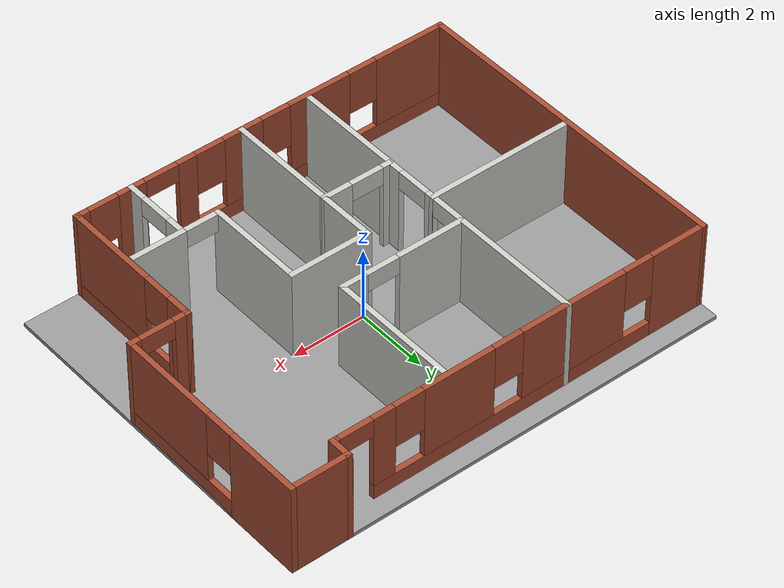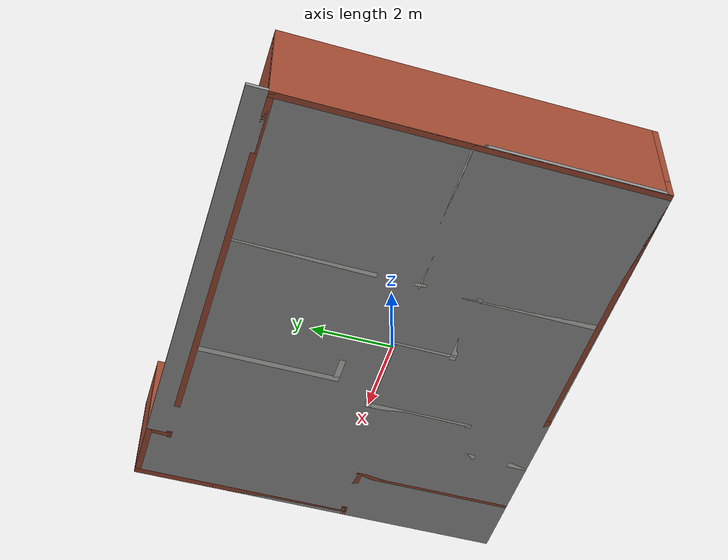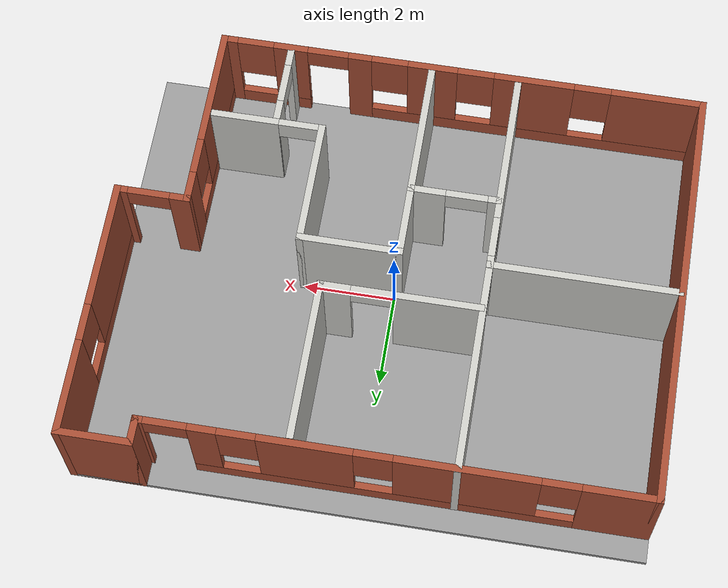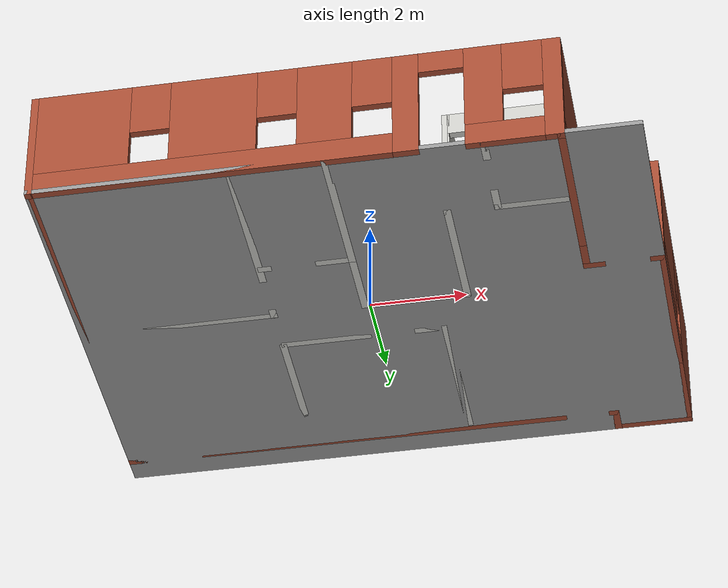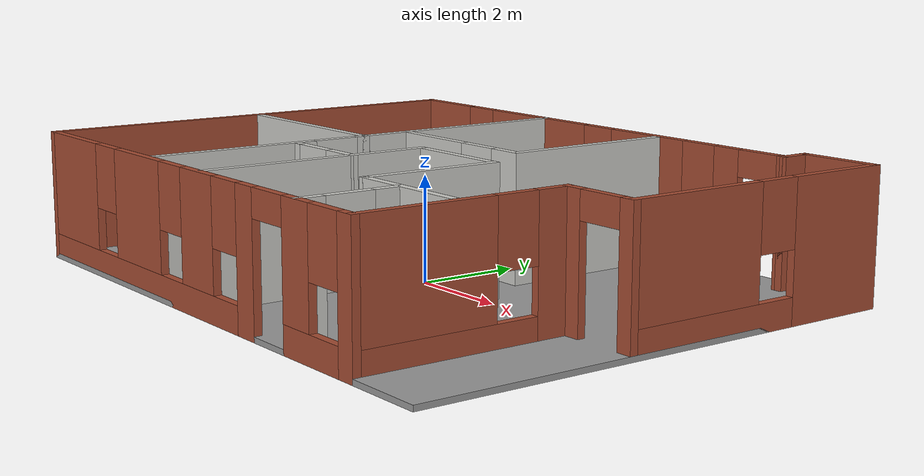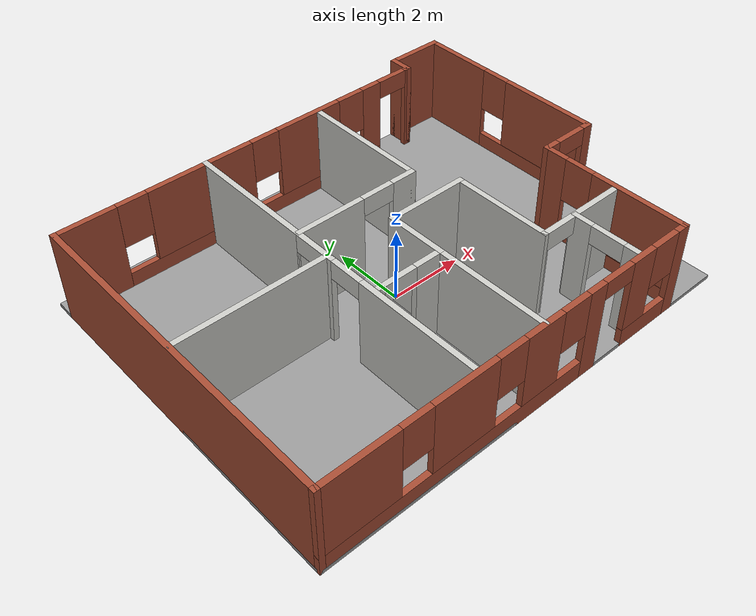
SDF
<?xml version='1.0'?>
<sdf version='1.6'>
  <model name='Building'>
    <pose frame=''>-0 0.25 0 0 -0 0</pose>
    <link name='Floor_0'>
      <collision name='Floor_0_Collision'>
        <geometry>
          <box>
            <size>12.15 9.65 0.1</size>
          </box>
        </geometry>
        <pose frame=''>0 0 0.05 0 -0 0</pose>
      </collision>
      <visual name='Floor_0_Visual'>
        <pose frame=''>0 0 0.05 0 -0 0</pose>
        <geometry>
          <box>
            <size>12.15 9.65 0.1</size>
          </box>
        </geometry>
        <material>
          <script>
            <uri>file://media/materials/scripts/gazebo.material</uri>
            <name>Gazebo/Grey</name>
          </script>
          <ambient>1 1 1 1</ambient>
        </material>
        <meta>
          <layer>0</layer>
        </meta>
      </visual>
      <pose frame=''>0 0 0 0 -0 0</pose>
    </link>
    <link name='Wall_10'>
      <pose frame=''>-0.75 4.25 0 0 -0 0</pose>
      <visual name='Wall_10_Visual_0'>
        <pose frame=''>-4.51925 0 1.25 0 -0 0</pose>
        <geometry>
          <box>
            <size>1.6115 0.15 2.5</size>
          </box>
        </geometry>
        <material>
          <script>
            <uri>file://media/materials/scripts/gazebo.material</uri>
            <name>Gazebo/Bricks</name>
          </script>
          <ambient>1 1 1 1</ambient>
        </material>
        <meta>
          <layer>0</layer>
        </meta>
      </visual>
      <collision name='Wall_10_Collision_0'>
        <geometry>
          <box>
            <size>1.6115 0.15 2.5</size>
          </box>
        </geometry>
        <pose frame=''>-4.51925 0 1.25 0 -0 0</pose>
      </collision>
      <visual name='Wall_10_Visual_1'>
        <pose frame=''>5.2153 0 1.25 0 -0 0</pose>
        <geometry>
          <box>
            <size>0.219398 0.15 2.5</size>
          </box>
        </geometry>
        <material>
          <script>
            <uri>file://media/materials/scripts/gazebo.material</uri>
            <name>Gazebo/Bricks</name>
          </script>
          <ambient>1 1 1 1</ambient>
        </material>
        <meta>
          <layer>0</layer>
        </meta>
      </visual>
      <collision name='Wall_10_Collision_1'>
        <geometry>
          <box>
            <size>0.219398 0.15 2.5</size>
          </box>
        </geometry>
        <pose frame=''>5.2153 0 1.25 0 -0 0</pose>
      </collision>
      <visual name='Wall_10_Visual_2'>
        <pose frame=''>0.246053 0 0.25 0 -0 0</pose>
        <geometry>
          <box>
            <size>7.9191 0.15 0.5</size>
          </box>
        </geometry>
        <material>
          <script>
            <uri>file://media/materials/scripts/gazebo.material</uri>
            <name>Gazebo/Bricks</name>
          </script>
          <ambient>1 1 1 1</ambient>
        </material>
        <meta>
          <layer>0</layer>
        </meta>
      </visual>
      <collision name='Wall_10_Collision_2'>
        <geometry>
          <box>
            <size>7.9191 0.15 0.5</size>
          </box>
        </geometry>
        <pose frame=''>0.246053 0 0.25 0 -0 0</pose>
      </collision>
      <visual name='Wall_10_Visual_3'>
        <pose frame=''>-1.433 0 1.5 0 -0 0</pose>
        <geometry>
          <box>
            <size>2.96099 0.15 2</size>
          </box>
        </geometry>
        <material>
          <script>
            <uri>file://media/materials/scripts/gazebo.material</uri>
            <name>Gazebo/Bricks</name>
          </script>
          <ambient>1 1 1 1</ambient>
        </material>
        <meta>
          <layer>0</layer>
        </meta>
      </visual>
      <collision name='Wall_10_Collision_3'>
        <geometry>
          <box>
            <size>2.96099 0.15 2</size>
          </box>
        </geometry>
        <pose frame=''>-1.433 0 1.5 0 -0 0</pose>
      </collision>
      <visual name='Wall_10_Visual_4'>
        <pose frame=''>1.82828 0 1.5 0 -0 0</pose>
        <geometry>
          <box>
            <size>1.96157 0.15 2</size>
          </box>
        </geometry>
        <material>
          <script>
            <uri>file://media/materials/scripts/gazebo.material</uri>
            <name>Gazebo/Bricks</name>
          </script>
          <ambient>1 1 1 1</ambient>
        </material>
        <meta>
          <layer>0</layer>
        </meta>
      </visual>
      <collision name='Wall_10_Collision_4'>
        <geometry>
          <box>
            <size>1.96157 0.15 2</size>
          </box>
        </geometry>
        <pose frame=''>1.82828 0 1.5 0 -0 0</pose>
      </collision>
      <visual name='Wall_10_Visual_5'>
        <pose frame=''>3.90733 0 1.5 0 -0 0</pose>
        <geometry>
          <box>
            <size>0.596536 0.15 2</size>
          </box>
        </geometry>
        <material>
          <script>
            <uri>file://media/materials/scripts/gazebo.material</uri>
            <name>Gazebo/Bricks</name>
          </script>
          <ambient>1 1 1 1</ambient>
        </material>
        <meta>
          <layer>0</layer>
        </meta>
      </visual>
      <collision name='Wall_10_Collision_5'>
        <geometry>
          <box>
            <size>0.596536 0.15 2</size>
          </box>
        </geometry>
        <pose frame=''>3.90733 0 1.5 0 -0 0</pose>
      </collision>
      <visual name='Wall_10_Visual_6'>
        <pose frame=''>-3.3135 0 1.9 0 -0 0</pose>
        <geometry>
          <box>
            <size>0.8 0.15 1.2</size>
          </box>
        </geometry>
        <material>
          <script>
            <uri>file://media/materials/scripts/gazebo.material</uri>
            <name>Gazebo/Bricks</name>
          </script>
          <ambient>1 1 1 1</ambient>
        </material>
        <meta>
          <layer>0</layer>
        </meta>
      </visual>
      <collision name='Wall_10_Collision_6'>
        <geometry>
          <box>
            <size>0.8 0.15 1.2</size>
          </box>
        </geometry>
        <pose frame=''>-3.3135 0 1.9 0 -0 0</pose>
      </collision>
      <visual name='Wall_10_Visual_7'>
        <pose frame=''>0.447498 0 1.9 0 -0 0</pose>
        <geometry>
          <box>
            <size>0.8 0.15 1.2</size>
          </box>
        </geometry>
        <material>
          <script>
            <uri>file://media/materials/scripts/gazebo.material</uri>
            <name>Gazebo/Bricks</name>
          </script>
          <ambient>1 1 1 1</ambient>
        </material>
        <meta>
          <layer>0</layer>
        </meta>
      </visual>
      <collision name='Wall_10_Collision_7'>
        <geometry>
          <box>
            <size>0.8 0.15 1.2</size>
          </box>
        </geometry>
        <pose frame=''>0.447498 0 1.9 0 -0 0</pose>
      </collision>
      <visual name='Wall_10_Visual_8'>
        <pose frame=''>3.20907 0 1.9 0 -0 0</pose>
        <geometry>
          <box>
            <size>0.8 0.15 1.2</size>
          </box>
        </geometry>
        <material>
          <script>
            <uri>file://media/materials/scripts/gazebo.material</uri>
            <name>Gazebo/Bricks</name>
          </script>
          <ambient>1 1 1 1</ambient>
        </material>
        <meta>
          <layer>0</layer>
        </meta>
      </visual>
      <collision name='Wall_10_Collision_8'>
        <geometry>
          <box>
            <size>0.8 0.15 1.2</size>
          </box>
        </geometry>
        <pose frame=''>3.20907 0 1.9 0 -0 0</pose>
      </collision>
      <visual name='Wall_10_Visual_9'>
        <pose frame=''>4.6556 0 2.25 0 -0 0</pose>
        <geometry>
          <box>
            <size>0.9 0.15 0.5</size>
          </box>
        </geometry>
        <material>
          <script>
            <uri>file://media/materials/scripts/gazebo.material</uri>
            <name>Gazebo/Bricks</name>
          </script>
          <ambient>1 1 1 1</ambient>
        </material>
        <meta>
          <layer>0</layer>
        </meta>
      </visual>
      <collision name='Wall_10_Collision_9'>
        <geometry>
          <box>
            <size>0.9 0.15 0.5</size>
          </box>
        </geometry>
        <pose frame=''>4.6556 0 2.25 0 -0 0</pose>
      </collision>
    </link>
    <link name='Wall_11'>
      <collision name='Wall_11_Collision'>
        <geometry>
          <box>
            <size>0.65 0.15 2.5</size>
          </box>
        </geometry>
        <pose frame=''>0 0 1.25 0 -0 0</pose>
      </collision>
      <visual name='Wall_11_Visual'>
        <pose frame=''>0 0 1.25 0 -0 0</pose>
        <geometry>
          <box>
            <size>0.65 0.15 2.5</size>
          </box>
        </geometry>
        <material>
          <script>
            <uri>file://media/materials/scripts/gazebo.material</uri>
            <name>Gazebo/Bricks</name>
          </script>
          <ambient>1 1 1 1</ambient>
        </material>
        <meta>
          <layer>0</layer>
        </meta>
      </visual>
      <pose frame=''>4.5 4.5 0 0 -0 1.5708</pose>
    </link>
    <link name='Wall_12'>
      <collision name='Wall_12_Collision'>
        <geometry>
          <box>
            <size>1.65 0.15 2.5</size>
          </box>
        </geometry>
        <pose frame=''>0 0 1.25 0 -0 0</pose>
      </collision>
      <visual name='Wall_12_Visual'>
        <pose frame=''>0 0 1.25 0 -0 0</pose>
        <geometry>
          <box>
            <size>1.65 0.15 2.5</size>
          </box>
        </geometry>
        <material>
          <script>
            <uri>file://media/materials/scripts/gazebo.material</uri>
            <name>Gazebo/Bricks</name>
          </script>
          <ambient>1 1 1 1</ambient>
        </material>
        <meta>
          <layer>0</layer>
        </meta>
      </visual>
      <pose frame=''>5.25 4.75 0 0 -0 0</pose>
    </link>
    <link name='Wall_13'>
      <pose frame=''>6 2 0 0 0 -1.5708</pose>
      <visual name='Wall_13_Visual_0'>
        <pose frame=''>-1.79372 0 1.25 0 -0 0</pose>
        <geometry>
          <box>
            <size>2.06257 0.15 2.5</size>
          </box>
        </geometry>
        <material>
          <script>
            <uri>file://media/materials/scripts/gazebo.material</uri>
            <name>Gazebo/Bricks</name>
          </script>
          <ambient>1 1 1 1</ambient>
        </material>
        <meta>
          <layer>0</layer>
        </meta>
      </visual>
      <collision name='Wall_13_Collision_0'>
        <geometry>
          <box>
            <size>2.06257 0.15 2.5</size>
          </box>
        </geometry>
        <pose frame=''>-1.79372 0 1.25 0 -0 0</pose>
      </collision>
      <visual name='Wall_13_Visual_1'>
        <pose frame=''>1.03128 0 0.25 0 -0 0</pose>
        <geometry>
          <box>
            <size>3.58743 0.15 0.5</size>
          </box>
        </geometry>
        <material>
          <script>
            <uri>file://media/materials/scripts/gazebo.material</uri>
            <name>Gazebo/Bricks</name>
          </script>
          <ambient>1 1 1 1</ambient>
        </material>
        <meta>
          <layer>0</layer>
        </meta>
      </visual>
      <collision name='Wall_13_Collision_1'>
        <geometry>
          <box>
            <size>3.58743 0.15 0.5</size>
          </box>
        </geometry>
        <pose frame=''>1.03128 0 0.25 0 -0 0</pose>
      </collision>
      <visual name='Wall_13_Visual_2'>
        <pose frame=''>1.43128 0 1.5 0 -0 0</pose>
        <geometry>
          <box>
            <size>2.78743 0.15 2</size>
          </box>
        </geometry>
        <material>
          <script>
            <uri>file://media/materials/scripts/gazebo.material</uri>
            <name>Gazebo/Bricks</name>
          </script>
          <ambient>1 1 1 1</ambient>
        </material>
        <meta>
          <layer>0</layer>
        </meta>
      </visual>
      <collision name='Wall_13_Collision_2'>
        <geometry>
          <box>
            <size>2.78743 0.15 2</size>
          </box>
        </geometry>
        <pose frame=''>1.43128 0 1.5 0 -0 0</pose>
      </collision>
      <visual name='Wall_13_Visual_3'>
        <pose frame=''>-0.362433 0 1.9 0 -0 0</pose>
        <geometry>
          <box>
            <size>0.8 0.15 1.2</size>
          </box>
        </geometry>
        <material>
          <script>
            <uri>file://media/materials/scripts/gazebo.material</uri>
            <name>Gazebo/Bricks</name>
          </script>
          <ambient>1 1 1 1</ambient>
        </material>
        <meta>
          <layer>0</layer>
        </meta>
      </visual>
      <collision name='Wall_13_Collision_3'>
        <geometry>
          <box>
            <size>0.8 0.15 1.2</size>
          </box>
        </geometry>
        <pose frame=''>-0.362433 0 1.9 0 -0 0</pose>
      </collision>
    </link>
    <link name='Wall_14'>
      <pose frame=''>5.25 -0.75 0 0 -0 3.14159</pose>
      <visual name='Wall_14_Visual_0'>
        <pose frame=''>-0.675418 0 1.25 0 -0 0</pose>
        <geometry>
          <box>
            <size>0.299163 0.15 2.5</size>
          </box>
        </geometry>
        <material>
          <script>
            <uri>file://media/materials/scripts/gazebo.material</uri>
            <name>Gazebo/Bricks</name>
          </script>
          <ambient>1 1 1 1</ambient>
        </material>
        <meta>
          <layer>0</layer>
        </meta>
      </visual>
      <collision name='Wall_14_Collision_0'>
        <geometry>
          <box>
            <size>0.299163 0.15 2.5</size>
          </box>
        </geometry>
        <pose frame=''>-0.675418 0 1.25 0 -0 0</pose>
      </collision>
      <visual name='Wall_14_Visual_1'>
        <pose frame=''>0.599582 0 1.25 0 -0 0</pose>
        <geometry>
          <box>
            <size>0.450837 0.15 2.5</size>
          </box>
        </geometry>
        <material>
          <script>
            <uri>file://media/materials/scripts/gazebo.material</uri>
            <name>Gazebo/Bricks</name>
          </script>
          <ambient>1 1 1 1</ambient>
        </material>
        <meta>
          <layer>0</layer>
        </meta>
      </visual>
      <collision name='Wall_14_Collision_1'>
        <geometry>
          <box>
            <size>0.450837 0.15 2.5</size>
          </box>
        </geometry>
        <pose frame=''>0.599582 0 1.25 0 -0 0</pose>
      </collision>
      <visual name='Wall_14_Visual_2'>
        <pose frame=''>-0.075837 0 2.25 0 -0 0</pose>
        <geometry>
          <box>
            <size>0.9 0.15 0.5</size>
          </box>
        </geometry>
        <material>
          <script>
            <uri>file://media/materials/scripts/gazebo.material</uri>
            <name>Gazebo/Bricks</name>
          </script>
          <ambient>1 1 1 1</ambient>
        </material>
        <meta>
          <layer>0</layer>
        </meta>
      </visual>
      <collision name='Wall_14_Collision_2'>
        <geometry>
          <box>
            <size>0.9 0.15 0.5</size>
          </box>
        </geometry>
        <pose frame=''>-0.075837 0 2.25 0 -0 0</pose>
      </collision>
    </link>
    <link name='Wall_15'>
      <pose frame=''>4.5 -2.75 0 0 0 -1.5708</pose>
      <visual name='Wall_15_Visual_0'>
        <pose frame=''>-1.71977 0 1.25 0 -0 0</pose>
        <geometry>
          <box>
            <size>0.71046 0.15 2.5</size>
          </box>
        </geometry>
        <material>
          <script>
            <uri>file://media/materials/scripts/gazebo.material</uri>
            <name>Gazebo/Bricks</name>
          </script>
          <ambient>1 1 1 1</ambient>
        </material>
        <meta>
          <layer>0</layer>
        </meta>
      </visual>
      <collision name='Wall_15_Collision_0'>
        <geometry>
          <box>
            <size>0.71046 0.15 2.5</size>
          </box>
        </geometry>
        <pose frame=''>-1.71977 0 1.25 0 -0 0</pose>
      </collision>
      <visual name='Wall_15_Visual_1'>
        <pose frame=''>0.35523 0 0.25 0 -0 0</pose>
        <geometry>
          <box>
            <size>3.43954 0.15 0.5</size>
          </box>
        </geometry>
        <material>
          <script>
            <uri>file://media/materials/scripts/gazebo.material</uri>
            <name>Gazebo/Bricks</name>
          </script>
          <ambient>1 1 1 1</ambient>
        </material>
        <meta>
          <layer>0</layer>
        </meta>
      </visual>
      <collision name='Wall_15_Collision_1'>
        <geometry>
          <box>
            <size>3.43954 0.15 0.5</size>
          </box>
        </geometry>
        <pose frame=''>0.35523 0 0.25 0 -0 0</pose>
      </collision>
      <visual name='Wall_15_Visual_2'>
        <pose frame=''>0.75523 0 1.5 0 -0 0</pose>
        <geometry>
          <box>
            <size>2.63954 0.15 2</size>
          </box>
        </geometry>
        <material>
          <script>
            <uri>file://media/materials/scripts/gazebo.material</uri>
            <name>Gazebo/Bricks</name>
          </script>
          <ambient>1 1 1 1</ambient>
        </material>
        <meta>
          <layer>0</layer>
        </meta>
      </visual>
      <collision name='Wall_15_Collision_2'>
        <geometry>
          <box>
            <size>2.63954 0.15 2</size>
          </box>
        </geometry>
        <pose frame=''>0.75523 0 1.5 0 -0 0</pose>
      </collision>
      <visual name='Wall_15_Visual_3'>
        <pose frame=''>-0.96454 0 1.9 0 -0 0</pose>
        <geometry>
          <box>
            <size>0.8 0.15 1.2</size>
          </box>
        </geometry>
        <material>
          <script>
            <uri>file://media/materials/scripts/gazebo.material</uri>
            <name>Gazebo/Bricks</name>
          </script>
          <ambient>1 1 1 1</ambient>
        </material>
        <meta>
          <layer>0</layer>
        </meta>
      </visual>
      <collision name='Wall_15_Collision_3'>
        <geometry>
          <box>
            <size>0.8 0.15 1.2</size>
          </box>
        </geometry>
        <pose frame=''>-0.96454 0 1.9 0 -0 0</pose>
      </collision>
    </link>
    <link name='Wall_16'>
      <pose frame=''>-0.75 -4.75 0 0 -0 3.14159</pose>
      <visual name='Wall_16_Visual_0'>
        <pose frame=''>-5.13705 0 1.25 0 -0 0</pose>
        <geometry>
          <box>
            <size>0.375908 0.15 2.5</size>
          </box>
        </geometry>
        <material>
          <script>
            <uri>file://media/materials/scripts/gazebo.material</uri>
            <name>Gazebo/Bricks</name>
          </script>
          <ambient>1 1 1 1</ambient>
        </material>
        <meta>
          <layer>0</layer>
        </meta>
      </visual>
      <collision name='Wall_16_Collision_0'>
        <geometry>
          <box>
            <size>0.375908 0.15 2.5</size>
          </box>
        </geometry>
        <pose frame=''>-5.13705 0 1.25 0 -0 0</pose>
      </collision>
      <visual name='Wall_16_Visual_1'>
        <pose frame=''>-2.23615 0 1.25 0 -0 0</pose>
        <geometry>
          <box>
            <size>0.518056 0.15 2.5</size>
          </box>
        </geometry>
        <material>
          <script>
            <uri>file://media/materials/scripts/gazebo.material</uri>
            <name>Gazebo/Bricks</name>
          </script>
          <ambient>1 1 1 1</ambient>
        </material>
        <meta>
          <layer>0</layer>
        </meta>
      </visual>
      <collision name='Wall_16_Collision_1'>
        <geometry>
          <box>
            <size>0.518056 0.15 2.5</size>
          </box>
        </geometry>
        <pose frame=''>-2.23615 0 1.25 0 -0 0</pose>
      </collision>
      <visual name='Wall_16_Visual_2'>
        <pose frame=''>-4.17213 0 0.25 0 -0 0</pose>
        <geometry>
          <box>
            <size>1.55392 0.15 0.5</size>
          </box>
        </geometry>
        <material>
          <script>
            <uri>file://media/materials/scripts/gazebo.material</uri>
            <name>Gazebo/Bricks</name>
          </script>
          <ambient>1 1 1 1</ambient>
        </material>
        <meta>
          <layer>0</layer>
        </meta>
      </visual>
      <collision name='Wall_16_Collision_2'>
        <geometry>
          <box>
            <size>1.55392 0.15 0.5</size>
          </box>
        </geometry>
        <pose frame=''>-4.17213 0 0.25 0 -0 0</pose>
      </collision>
      <visual name='Wall_16_Visual_3'>
        <pose frame=''>1.67394 0 0.25 0 -0 0</pose>
        <geometry>
          <box>
            <size>7.30212 0.15 0.5</size>
          </box>
        </geometry>
        <material>
          <script>
            <uri>file://media/materials/scripts/gazebo.material</uri>
            <name>Gazebo/Bricks</name>
          </script>
          <ambient>1 1 1 1</ambient>
        </material>
        <meta>
          <layer>0</layer>
        </meta>
      </visual>
      <collision name='Wall_16_Collision_3'>
        <geometry>
          <box>
            <size>7.30212 0.15 0.5</size>
          </box>
        </geometry>
        <pose frame=''>1.67394 0 0.25 0 -0 0</pose>
      </collision>
      <visual name='Wall_16_Visual_4'>
        <pose frame=''>-3.77213 0 1.5 0 -0 0</pose>
        <geometry>
          <box>
            <size>0.753917 0.15 2</size>
          </box>
        </geometry>
        <material>
          <script>
            <uri>file://media/materials/scripts/gazebo.material</uri>
            <name>Gazebo/Bricks</name>
          </script>
          <ambient>1 1 1 1</ambient>
        </material>
        <meta>
          <layer>0</layer>
        </meta>
      </visual>
      <collision name='Wall_16_Collision_4'>
        <geometry>
          <box>
            <size>0.753917 0.15 2</size>
          </box>
        </geometry>
        <pose frame=''>-3.77213 0 1.5 0 -0 0</pose>
      </collision>
      <visual name='Wall_16_Visual_5'>
        <pose frame=''>-3.77213 0 1.5 0 -0 0</pose>
        <geometry>
          <box>
            <size>0.753917 0.15 2</size>
          </box>
        </geometry>
        <material>
          <script>
            <uri>file://media/materials/scripts/gazebo.material</uri>
            <name>Gazebo/Bricks</name>
          </script>
          <ambient>1 1 1 1</ambient>
        </material>
        <meta>
          <layer>0</layer>
        </meta>
      </visual>
      <collision name='Wall_16_Collision_5'>
        <geometry>
          <box>
            <size>0.753917 0.15 2</size>
          </box>
        </geometry>
        <pose frame=''>-3.77213 0 1.5 0 -0 0</pose>
      </collision>
      <visual name='Wall_16_Visual_6'>
        <pose frame=''>-0.630295 0 1.5 0 -0 0</pose>
        <geometry>
          <box>
            <size>1.09365 0.15 2</size>
          </box>
        </geometry>
        <material>
          <script>
            <uri>file://media/materials/scripts/gazebo.material</uri>
            <name>Gazebo/Bricks</name>
          </script>
          <ambient>1 1 1 1</ambient>
        </material>
        <meta>
          <layer>0</layer>
        </meta>
      </visual>
      <collision name='Wall_16_Collision_6'>
        <geometry>
          <box>
            <size>1.09365 0.15 2</size>
          </box>
        </geometry>
        <pose frame=''>-0.630295 0 1.5 0 -0 0</pose>
      </collision>
      <visual name='Wall_16_Visual_7'>
        <pose frame=''>1.59211 0 1.5 0 -0 0</pose>
        <geometry>
          <box>
            <size>1.75116 0.15 2</size>
          </box>
        </geometry>
        <material>
          <script>
            <uri>file://media/materials/scripts/gazebo.material</uri>
            <name>Gazebo/Bricks</name>
          </script>
          <ambient>1 1 1 1</ambient>
        </material>
        <meta>
          <layer>0</layer>
        </meta>
      </visual>
      <collision name='Wall_16_Collision_7'>
        <geometry>
          <box>
            <size>1.75116 0.15 2</size>
          </box>
        </geometry>
        <pose frame=''>1.59211 0 1.5 0 -0 0</pose>
      </collision>
      <visual name='Wall_16_Visual_8'>
        <pose frame=''>4.29635 0 1.5 0 -0 0</pose>
        <geometry>
          <box>
            <size>2.05731 0.15 2</size>
          </box>
        </geometry>
        <material>
          <script>
            <uri>file://media/materials/scripts/gazebo.material</uri>
            <name>Gazebo/Bricks</name>
          </script>
          <ambient>1 1 1 1</ambient>
        </material>
        <meta>
          <layer>0</layer>
        </meta>
      </visual>
      <collision name='Wall_16_Collision_8'>
        <geometry>
          <box>
            <size>2.05731 0.15 2</size>
          </box>
        </geometry>
        <pose frame=''>4.29635 0 1.5 0 -0 0</pose>
      </collision>
      <visual name='Wall_16_Visual_9'>
        <pose frame=''>-4.54909 0 1.9 0 -0 0</pose>
        <geometry>
          <box>
            <size>0.8 0.15 1.2</size>
          </box>
        </geometry>
        <material>
          <script>
            <uri>file://media/materials/scripts/gazebo.material</uri>
            <name>Gazebo/Bricks</name>
          </script>
          <ambient>1 1 1 1</ambient>
        </material>
        <meta>
          <layer>0</layer>
        </meta>
      </visual>
      <collision name='Wall_16_Collision_9'>
        <geometry>
          <box>
            <size>0.8 0.15 1.2</size>
          </box>
        </geometry>
        <pose frame=''>-4.54909 0 1.9 0 -0 0</pose>
      </collision>
      <visual name='Wall_16_Visual_10'>
        <pose frame=''>-1.57712 0 1.9 0 -0 0</pose>
        <geometry>
          <box>
            <size>0.8 0.15 1.2</size>
          </box>
        </geometry>
        <material>
          <script>
            <uri>file://media/materials/scripts/gazebo.material</uri>
            <name>Gazebo/Bricks</name>
          </script>
          <ambient>1 1 1 1</ambient>
        </material>
        <meta>
          <layer>0</layer>
        </meta>
      </visual>
      <collision name='Wall_16_Collision_10'>
        <geometry>
          <box>
            <size>0.8 0.15 1.2</size>
          </box>
        </geometry>
        <pose frame=''>-1.57712 0 1.9 0 -0 0</pose>
      </collision>
      <visual name='Wall_16_Visual_11'>
        <pose frame=''>0.316528 0 1.9 0 -0 0</pose>
        <geometry>
          <box>
            <size>0.8 0.15 1.2</size>
          </box>
        </geometry>
        <material>
          <script>
            <uri>file://media/materials/scripts/gazebo.material</uri>
            <name>Gazebo/Bricks</name>
          </script>
          <ambient>1 1 1 1</ambient>
        </material>
        <meta>
          <layer>0</layer>
        </meta>
      </visual>
      <collision name='Wall_16_Collision_11'>
        <geometry>
          <box>
            <size>0.8 0.15 1.2</size>
          </box>
        </geometry>
        <pose frame=''>0.316528 0 1.9 0 -0 0</pose>
      </collision>
      <visual name='Wall_16_Visual_12'>
        <pose frame=''>2.86769 0 1.9 0 -0 0</pose>
        <geometry>
          <box>
            <size>0.8 0.15 1.2</size>
          </box>
        </geometry>
        <material>
          <script>
            <uri>file://media/materials/scripts/gazebo.material</uri>
            <name>Gazebo/Bricks</name>
          </script>
          <ambient>1 1 1 1</ambient>
        </material>
        <meta>
          <layer>0</layer>
        </meta>
      </visual>
      <collision name='Wall_16_Collision_12'>
        <geometry>
          <box>
            <size>0.8 0.15 1.2</size>
          </box>
        </geometry>
        <pose frame=''>2.86769 0 1.9 0 -0 0</pose>
      </collision>
      <visual name='Wall_16_Visual_13'>
        <pose frame=''>-2.94517 0 2.25 0 -0 0</pose>
        <geometry>
          <box>
            <size>0.9 0.15 0.5</size>
          </box>
        </geometry>
        <material>
          <script>
            <uri>file://media/materials/scripts/gazebo.material</uri>
            <name>Gazebo/Bricks</name>
          </script>
          <ambient>1 1 1 1</ambient>
        </material>
        <meta>
          <layer>0</layer>
        </meta>
      </visual>
      <collision name='Wall_16_Collision_13'>
        <geometry>
          <box>
            <size>0.9 0.15 0.5</size>
          </box>
        </geometry>
        <pose frame=''>-2.94517 0 2.25 0 -0 0</pose>
      </collision>
      <visual name='Wall_16_Visual_14'>
        <pose frame=''>-2.94517 0 2.25 0 -0 0</pose>
        <geometry>
          <box>
            <size>0.9 0.15 0.5</size>
          </box>
        </geometry>
        <material>
          <script>
            <uri>file://media/materials/scripts/gazebo.material</uri>
            <name>Gazebo/Bricks</name>
          </script>
          <ambient>1 1 1 1</ambient>
        </material>
        <meta>
          <layer>0</layer>
        </meta>
      </visual>
      <collision name='Wall_16_Collision_14'>
        <geometry>
          <box>
            <size>0.9 0.15 0.5</size>
          </box>
        </geometry>
        <pose frame=''>-2.94517 0 2.25 0 -0 0</pose>
      </collision>
    </link>
    <link name='Wall_17'>
      <pose frame=''>-2 -0.171 0 0 0 -1.5708</pose>
      <visual name='Wall_17_Visual_0'>
        <pose frame=''>-2.70284 0 1.25 0 -0 0</pose>
        <geometry>
          <box>
            <size>3.59432 0.15 2.5</size>
          </box>
        </geometry>
        <material>
          <script>
            <uri>file://media/materials/scripts/gazebo.material</uri>
            <name>Gazebo/CeilingTiled</name>
          </script>
          <ambient>1 1 1 1</ambient>
        </material>
        <meta>
          <layer>0</layer>
        </meta>
      </visual>
      <collision name='Wall_17_Collision_0'>
        <geometry>
          <box>
            <size>3.59432 0.15 2.5</size>
          </box>
        </geometry>
        <pose frame=''>-2.70284 0 1.25 0 -0 0</pose>
      </collision>
      <visual name='Wall_17_Visual_1'>
        <pose frame=''>0.136083 0 1.25 0 -0 0</pose>
        <geometry>
          <box>
            <size>0.283529 0.15 2.5</size>
          </box>
        </geometry>
        <material>
          <script>
            <uri>file://media/materials/scripts/gazebo.material</uri>
            <name>Gazebo/CeilingTiled</name>
          </script>
          <ambient>1 1 1 1</ambient>
        </material>
        <meta>
          <layer>0</layer>
        </meta>
      </visual>
      <collision name='Wall_17_Collision_1'>
        <geometry>
          <box>
            <size>0.283529 0.15 2.5</size>
          </box>
        </geometry>
        <pose frame=''>0.136083 0 1.25 0 -0 0</pose>
      </collision>
      <visual name='Wall_17_Visual_2'>
        <pose frame=''>2.83892 0 1.25 0 -0 0</pose>
        <geometry>
          <box>
            <size>3.32215 0.15 2.5</size>
          </box>
        </geometry>
        <material>
          <script>
            <uri>file://media/materials/scripts/gazebo.material</uri>
            <name>Gazebo/CeilingTiled</name>
          </script>
          <ambient>1 1 1 1</ambient>
        </material>
        <meta>
          <layer>0</layer>
        </meta>
      </visual>
      <collision name='Wall_17_Collision_2'>
        <geometry>
          <box>
            <size>3.32215 0.15 2.5</size>
          </box>
        </geometry>
        <pose frame=''>2.83892 0 1.25 0 -0 0</pose>
      </collision>
      <visual name='Wall_17_Visual_3'>
        <pose frame=''>-0.455681 0 2.25 0 -0 0</pose>
        <geometry>
          <box>
            <size>0.9 0.15 0.5</size>
          </box>
        </geometry>
        <material>
          <script>
            <uri>file://media/materials/scripts/gazebo.material</uri>
            <name>Gazebo/CeilingTiled</name>
          </script>
          <ambient>1 1 1 1</ambient>
        </material>
        <meta>
          <layer>0</layer>
        </meta>
      </visual>
      <collision name='Wall_17_Collision_3'>
        <geometry>
          <box>
            <size>0.9 0.15 0.5</size>
          </box>
        </geometry>
        <pose frame=''>-0.455681 0 2.25 0 -0 0</pose>
      </collision>
      <visual name='Wall_17_Visual_4'>
        <pose frame=''>0.727848 0 2.25 0 -0 0</pose>
        <geometry>
          <box>
            <size>0.9 0.15 0.5</size>
          </box>
        </geometry>
        <material>
          <script>
            <uri>file://media/materials/scripts/gazebo.material</uri>
            <name>Gazebo/CeilingTiled</name>
          </script>
          <ambient>1 1 1 1</ambient>
        </material>
        <meta>
          <layer>0</layer>
        </meta>
      </visual>
      <collision name='Wall_17_Collision_4'>
        <geometry>
          <box>
            <size>0.9 0.15 0.5</size>
          </box>
        </geometry>
        <pose frame=''>0.727848 0 2.25 0 -0 0</pose>
      </collision>
    </link>
    <link name='Wall_19'>
      <collision name='Wall_19_Collision'>
        <geometry>
          <box>
            <size>4.103 0.15 2.5</size>
          </box>
        </geometry>
        <pose frame=''>0 0 1.25 0 -0 0</pose>
      </collision>
      <visual name='Wall_19_Visual'>
        <pose frame=''>0 0 1.25 0 -0 0</pose>
        <geometry>
          <box>
            <size>4.103 0.15 2.5</size>
          </box>
        </geometry>
        <material>
          <script>
            <uri>file://media/materials/scripts/gazebo.material</uri>
            <name>Gazebo/CeilingTiled</name>
          </script>
          <ambient>1 1 1 1</ambient>
        </material>
        <meta>
          <layer>0</layer>
        </meta>
      </visual>
      <pose frame=''>-3.9765 -0.25 0 0 -0 3.14159</pose>
    </link>
    <link name='Wall_21'>
      <pose frame=''>-0.284 0.75 0 0 -0 0</pose>
      <visual name='Wall_21_Visual_0'>
        <pose frame=''>-0.806794 0 1.25 0 -0 0</pose>
        <geometry>
          <box>
            <size>1.88641 0.15 2.5</size>
          </box>
        </geometry>
        <material>
          <script>
            <uri>file://media/materials/scripts/gazebo.material</uri>
            <name>Gazebo/CeilingTiled</name>
          </script>
          <ambient>1 1 1 1</ambient>
        </material>
        <meta>
          <layer>0</layer>
        </meta>
      </visual>
      <collision name='Wall_21_Collision_0'>
        <geometry>
          <box>
            <size>1.88641 0.15 2.5</size>
          </box>
        </geometry>
        <pose frame=''>-0.806794 0 1.25 0 -0 0</pose>
      </collision>
      <visual name='Wall_21_Visual_1'>
        <pose frame=''>1.39321 0 1.25 0 -0 0</pose>
        <geometry>
          <box>
            <size>0.713588 0.15 2.5</size>
          </box>
        </geometry>
        <material>
          <script>
            <uri>file://media/materials/scripts/gazebo.material</uri>
            <name>Gazebo/CeilingTiled</name>
          </script>
          <ambient>1 1 1 1</ambient>
        </material>
        <meta>
          <layer>0</layer>
        </meta>
      </visual>
      <collision name='Wall_21_Collision_1'>
        <geometry>
          <box>
            <size>0.713588 0.15 2.5</size>
          </box>
        </geometry>
        <pose frame=''>1.39321 0 1.25 0 -0 0</pose>
      </collision>
      <visual name='Wall_21_Visual_2'>
        <pose frame=''>0.586412 0 2.25 0 -0 0</pose>
        <geometry>
          <box>
            <size>0.9 0.15 0.5</size>
          </box>
        </geometry>
        <material>
          <script>
            <uri>file://media/materials/scripts/gazebo.material</uri>
            <name>Gazebo/CeilingTiled</name>
          </script>
          <ambient>1 1 1 1</ambient>
        </material>
        <meta>
          <layer>0</layer>
        </meta>
      </visual>
      <collision name='Wall_21_Collision_2'>
        <geometry>
          <box>
            <size>0.9 0.15 0.5</size>
          </box>
        </geometry>
        <pose frame=''>0.586412 0 2.25 0 -0 0</pose>
      </collision>
    </link>
    <link name='Wall_22'>
      <collision name='Wall_22_Collision'>
        <geometry>
          <box>
            <size>3.493 0.15 2.5</size>
          </box>
        </geometry>
        <pose frame=''>0 0 1.25 0 -0 0</pose>
      </collision>
      <visual name='Wall_22_Visual'>
        <pose frame=''>0 0 1.25 0 -0 0</pose>
        <geometry>
          <box>
            <size>3.493 0.15 2.5</size>
          </box>
        </geometry>
        <material>
          <script>
            <uri>file://media/materials/scripts/gazebo.material</uri>
            <name>Gazebo/CeilingTiled</name>
          </script>
          <ambient>1 1 1 1</ambient>
        </material>
        <meta>
          <layer>0</layer>
        </meta>
      </visual>
      <pose frame=''>1.391 2.4215 0 0 -0 1.5708</pose>
    </link>
    <link name='Wall_24'>
      <pose frame=''>-1.034 -1.75 0 0 -0 0</pose>
      <visual name='Wall_24_Visual_0'>
        <pose frame=''>-0.858964 0 1.25 0 -0 0</pose>
        <geometry>
          <box>
            <size>0.282073 0.15 2.5</size>
          </box>
        </geometry>
        <material>
          <script>
            <uri>file://media/materials/scripts/gazebo.material</uri>
            <name>Gazebo/CeilingTiled</name>
          </script>
          <ambient>1 1 1 1</ambient>
        </material>
        <meta>
          <layer>0</layer>
        </meta>
      </visual>
      <collision name='Wall_24_Collision_0'>
        <geometry>
          <box>
            <size>0.282073 0.15 2.5</size>
          </box>
        </geometry>
        <pose frame=''>-0.858964 0 1.25 0 -0 0</pose>
      </collision>
      <visual name='Wall_24_Visual_1'>
        <pose frame=''>0.591036 0 1.25 0 -0 0</pose>
        <geometry>
          <box>
            <size>0.817927 0.15 2.5</size>
          </box>
        </geometry>
        <material>
          <script>
            <uri>file://media/materials/scripts/gazebo.material</uri>
            <name>Gazebo/CeilingTiled</name>
          </script>
          <ambient>1 1 1 1</ambient>
        </material>
        <meta>
          <layer>0</layer>
        </meta>
      </visual>
      <collision name='Wall_24_Collision_1'>
        <geometry>
          <box>
            <size>0.817927 0.15 2.5</size>
          </box>
        </geometry>
        <pose frame=''>0.591036 0 1.25 0 -0 0</pose>
      </collision>
      <visual name='Wall_24_Visual_2'>
        <pose frame=''>-0.267927 0 2.25 0 -0 0</pose>
        <geometry>
          <box>
            <size>0.9 0.15 0.5</size>
          </box>
        </geometry>
        <material>
          <script>
            <uri>file://media/materials/scripts/gazebo.material</uri>
            <name>Gazebo/CeilingTiled</name>
          </script>
          <ambient>1 1 1 1</ambient>
        </material>
        <meta>
          <layer>0</layer>
        </meta>
      </visual>
      <collision name='Wall_24_Collision_2'>
        <geometry>
          <box>
            <size>0.9 0.15 0.5</size>
          </box>
        </geometry>
        <pose frame=''>-0.267927 0 2.25 0 -0 0</pose>
      </collision>
    </link>
    <link name='Wall_25'>
      <collision name='Wall_25_Collision'>
        <geometry>
          <box>
            <size>3.12197 0.15 2.5</size>
          </box>
        </geometry>
        <pose frame=''>0 0 1.25 0 -0 0</pose>
      </collision>
      <visual name='Wall_25_Visual'>
        <pose frame=''>0 0 1.25 0 -0 0</pose>
        <geometry>
          <box>
            <size>3.12197 0.15 2.5</size>
          </box>
        </geometry>
        <material>
          <script>
            <uri>file://media/materials/scripts/gazebo.material</uri>
            <name>Gazebo/CeilingTiled</name>
          </script>
          <ambient>1 1 1 1</ambient>
        </material>
        <meta>
          <layer>0</layer>
        </meta>
      </visual>
      <pose frame=''>-0.109221 -3.23599 0 0 0 -1.57095</pose>
    </link>
    <link name='Wall_27'>
      <collision name='Wall_27_Collision'>
        <geometry>
          <box>
            <size>1.65 0.15 2.5</size>
          </box>
        </geometry>
        <pose frame=''>0 0 1.25 0 -0 0</pose>
      </collision>
      <visual name='Wall_27_Visual'>
        <pose frame=''>0 0 1.25 0 -0 0</pose>
        <geometry>
          <box>
            <size>1.65 0.15 2.5</size>
          </box>
        </geometry>
        <material>
          <script>
            <uri>file://media/materials/scripts/gazebo.material</uri>
            <name>Gazebo/CeilingTiled</name>
          </script>
          <ambient>1 1 1 1</ambient>
        </material>
        <meta>
          <layer>0</layer>
        </meta>
      </visual>
      <pose frame=''>-0.109 -1 0 0 -0 1.5708</pose>
    </link>
    <link name='Wall_28'>
      <collision name='Wall_28_Collision'>
        <geometry>
          <box>
            <size>2.259 0.15 2.5</size>
          </box>
        </geometry>
        <pose frame=''>0 0 1.25 0 -0 0</pose>
      </collision>
      <visual name='Wall_28_Visual'>
        <pose frame=''>0 0 1.25 0 -0 0</pose>
        <geometry>
          <box>
            <size>2.259 0.15 2.5</size>
          </box>
        </geometry>
        <material>
          <script>
            <uri>file://media/materials/scripts/gazebo.material</uri>
            <name>Gazebo/CeilingTiled</name>
          </script>
          <ambient>1 1 1 1</ambient>
        </material>
        <meta>
          <layer>0</layer>
        </meta>
      </visual>
      <pose frame=''>0.9455 -0.25 0 0 -0 0</pose>
    </link>
    <link name='Wall_29'>
      <collision name='Wall_29_Collision'>
        <geometry>
          <box>
            <size>2.772 0.15 2.5</size>
          </box>
        </geometry>
        <pose frame=''>0 0 1.25 0 -0 0</pose>
      </collision>
      <visual name='Wall_29_Visual'>
        <pose frame=''>0 0 1.25 0 -0 0</pose>
        <geometry>
          <box>
            <size>2.772 0.15 2.5</size>
          </box>
        </geometry>
        <material>
          <script>
            <uri>file://media/materials/scripts/gazebo.material</uri>
            <name>Gazebo/CeilingTiled</name>
          </script>
          <ambient>1 1 1 1</ambient>
        </material>
        <meta>
          <layer>0</layer>
        </meta>
      </visual>
      <pose frame=''>2 -1.561 0 0 0 -1.5708</pose>
    </link>
    <link name='Wall_30'>
      <pose frame=''>3.17028 -2.87199 0 0 -0 1.2e-05</pose>
      <visual name='Wall_30_Visual_0'>
        <pose frame=''>-1.1901 0 1.25 0 -0 0</pose>
        <geometry>
          <box>
            <size>0.110365 0.15 2.5</size>
          </box>
        </geometry>
        <material>
          <script>
            <uri>file://media/materials/scripts/gazebo.material</uri>
            <name>Gazebo/CeilingTiled</name>
          </script>
          <ambient>1 1 1 1</ambient>
        </material>
        <meta>
          <layer>0</layer>
        </meta>
      </visual>
      <collision name='Wall_30_Collision_0'>
        <geometry>
          <box>
            <size>0.110365 0.15 2.5</size>
          </box>
        </geometry>
        <pose frame=''>-1.1901 0 1.25 0 -0 0</pose>
      </collision>
      <visual name='Wall_30_Visual_1'>
        <pose frame=''>0.505183 0 1.25 0 -0 0</pose>
        <geometry>
          <box>
            <size>1.48019 0.15 2.5</size>
          </box>
        </geometry>
        <material>
          <script>
            <uri>file://media/materials/scripts/gazebo.material</uri>
            <name>Gazebo/CeilingTiled</name>
          </script>
          <ambient>1 1 1 1</ambient>
        </material>
        <meta>
          <layer>0</layer>
        </meta>
      </visual>
      <collision name='Wall_30_Collision_1'>
        <geometry>
          <box>
            <size>1.48019 0.15 2.5</size>
          </box>
        </geometry>
        <pose frame=''>0.505183 0 1.25 0 -0 0</pose>
      </collision>
      <visual name='Wall_30_Visual_2'>
        <pose frame=''>-0.684913 0 2.25 0 -0 0</pose>
        <geometry>
          <box>
            <size>0.9 0.15 0.5</size>
          </box>
        </geometry>
        <material>
          <script>
            <uri>file://media/materials/scripts/gazebo.material</uri>
            <name>Gazebo/CeilingTiled</name>
          </script>
          <ambient>1 1 1 1</ambient>
        </material>
        <meta>
          <layer>0</layer>
        </meta>
      </visual>
      <collision name='Wall_30_Collision_2'>
        <geometry>
          <box>
            <size>0.9 0.15 0.5</size>
          </box>
        </geometry>
        <pose frame=''>-0.684913 0 2.25 0 -0 0</pose>
      </collision>
    </link>
    <link name='Wall_32'>
      <pose frame=''>3 -3.823 0 0 0 -1.5708</pose>
      <visual name='Wall_32_Visual_0'>
        <pose frame=''>-0.71424 0 1.25 0 -0 0</pose>
        <geometry>
          <box>
            <size>0.57152 0.15 2.5</size>
          </box>
        </geometry>
        <material>
          <script>
            <uri>file://media/materials/scripts/gazebo.material</uri>
            <name>Gazebo/CeilingTiled</name>
          </script>
          <ambient>1 1 1 1</ambient>
        </material>
        <meta>
          <layer>0</layer>
        </meta>
      </visual>
      <collision name='Wall_32_Collision_0'>
        <geometry>
          <box>
            <size>0.57152 0.15 2.5</size>
          </box>
        </geometry>
        <pose frame=''>-0.71424 0 1.25 0 -0 0</pose>
      </collision>
      <visual name='Wall_32_Visual_1'>
        <pose frame=''>0.73576 0 1.25 0 -0 0</pose>
        <geometry>
          <box>
            <size>0.52848 0.15 2.5</size>
          </box>
        </geometry>
        <material>
          <script>
            <uri>file://media/materials/scripts/gazebo.material</uri>
            <name>Gazebo/CeilingTiled</name>
          </script>
          <ambient>1 1 1 1</ambient>
        </material>
        <meta>
          <layer>0</layer>
        </meta>
      </visual>
      <collision name='Wall_32_Collision_1'>
        <geometry>
          <box>
            <size>0.52848 0.15 2.5</size>
          </box>
        </geometry>
        <pose frame=''>0.73576 0 1.25 0 -0 0</pose>
      </collision>
      <visual name='Wall_32_Visual_2'>
        <pose frame=''>0.02152 0 2.25 0 -0 0</pose>
        <geometry>
          <box>
            <size>0.9 0.15 0.5</size>
          </box>
        </geometry>
        <material>
          <script>
            <uri>file://media/materials/scripts/gazebo.material</uri>
            <name>Gazebo/CeilingTiled</name>
          </script>
          <ambient>1 1 1 1</ambient>
        </material>
        <meta>
          <layer>0</layer>
        </meta>
      </visual>
      <collision name='Wall_32_Collision_2'>
        <geometry>
          <box>
            <size>0.9 0.15 0.5</size>
          </box>
        </geometry>
        <pose frame=''>0.02152 0 2.25 0 -0 0</pose>
      </collision>
    </link>
    <link name='Wall_9'>
      <collision name='Wall_9_Collision'>
        <geometry>
          <box>
            <size>9.15 0.15 2.5</size>
          </box>
        </geometry>
        <pose frame=''>0 0 1.25 0 -0 0</pose>
      </collision>
      <visual name='Wall_9_Visual'>
        <pose frame=''>0 0 1.25 0 -0 0</pose>
        <geometry>
          <box>
            <size>9.15 0.15 2.5</size>
          </box>
        </geometry>
        <material>
          <script>
            <uri>file://media/materials/scripts/gazebo.material</uri>
            <name>Gazebo/Bricks</name>
          </script>
          <ambient>1 1 1 1</ambient>
        </material>
        <meta>
          <layer>0</layer>
        </meta>
      </visual>
      <pose frame=''>-6 -0.25 0 0 -0 1.5708</pose>
    </link>
    <static>1</static>
  </model>
</sdf>
